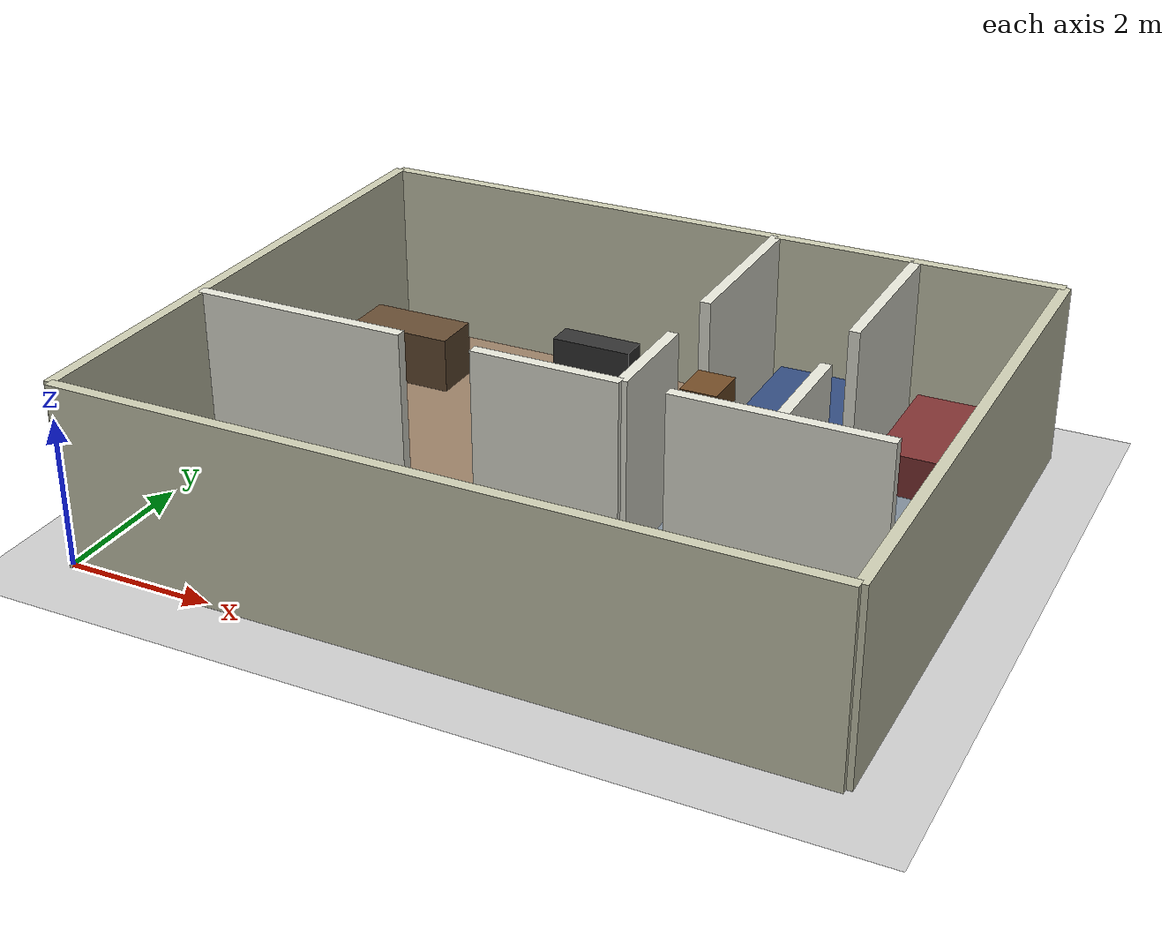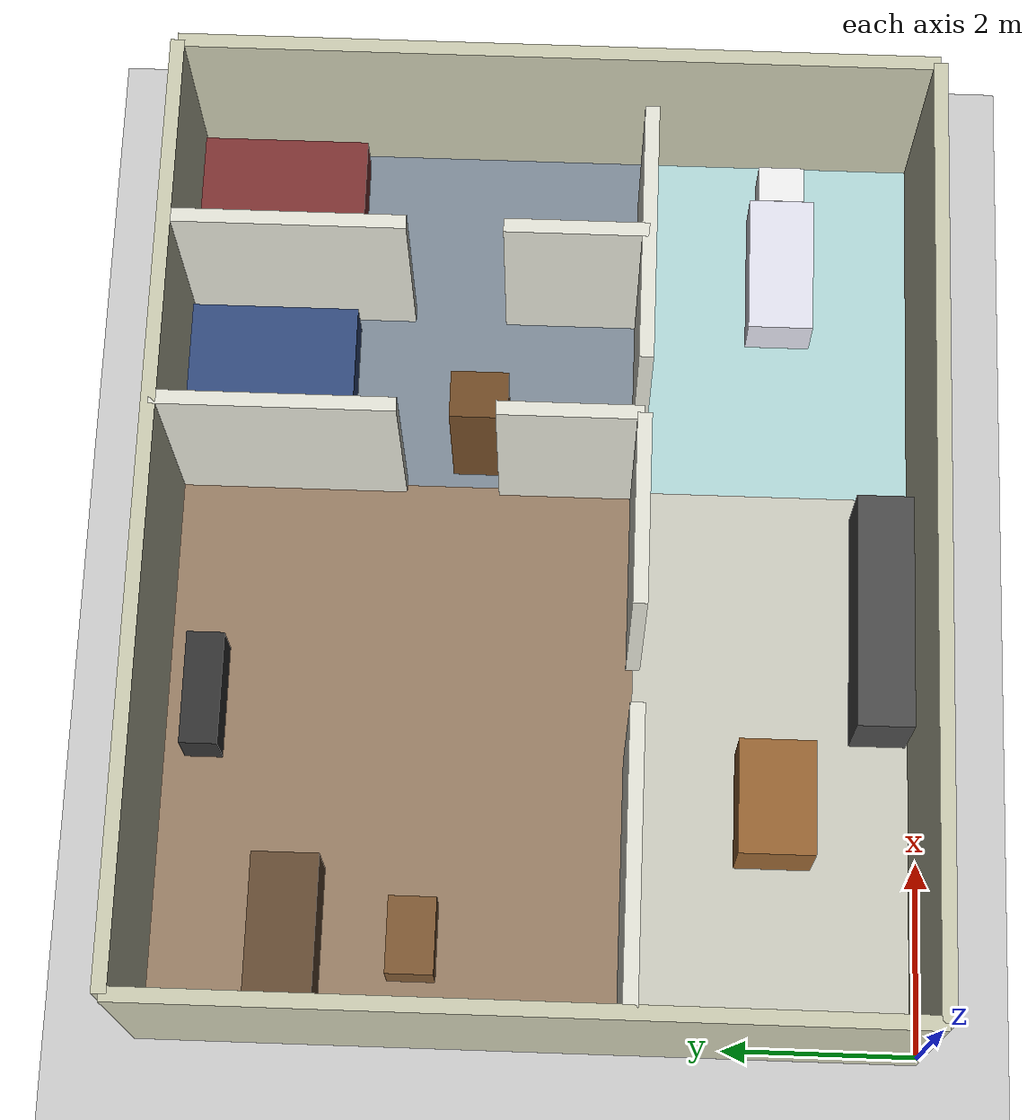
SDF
<?xml version="1.0" ?>
<sdf version="1.6">
  <world name="apartment">

    <!-- Physics -->
    <physics type="ode">
      <max_step_size>0.001</max_step_size>
      <real_time_factor>1</real_time_factor>
      <real_time_update_rate>1000</real_time_update_rate>
    </physics>

    <!-- Lighting -->
    <include>
      <uri>model://sun</uri>
    </include>

    <!-- Ground Plane -->
    <include>
      <uri>model://ground_plane</uri>
    </include>

    <!-- ==================== APARTMENT STRUCTURE ==================== -->
    <!-- Outer Walls - 10m x 8m apartment -->

    <!-- North Wall (top) -->
    <model name="north_wall">
      <static>true</static>
      <pose>5 8 1.25 0 0 0</pose>
      <link name="link">
        <collision name="collision">
          <geometry>
            <box><size>10 0.15 2.5</size></box>
          </geometry>
        </collision>
        <visual name="visual">
          <geometry>
            <box><size>10 0.15 2.5</size></box>
          </geometry>
          <material>
            <ambient>0.8 0.8 0.7 1</ambient>
            <diffuse>0.8 0.8 0.7 1</diffuse>
          </material>
        </visual>
      </link>
    </model>

    <!-- South Wall (bottom) -->
    <model name="south_wall">
      <static>true</static>
      <pose>5 0 1.25 0 0 0</pose>
      <link name="link">
        <collision name="collision">
          <geometry>
            <box><size>10 0.15 2.5</size></box>
          </geometry>
        </collision>
        <visual name="visual">
          <geometry>
            <box><size>10 0.15 2.5</size></box>
          </geometry>
          <material>
            <ambient>0.8 0.8 0.7 1</ambient>
            <diffuse>0.8 0.8 0.7 1</diffuse>
          </material>
        </visual>
      </link>
    </model>

    <!-- West Wall (left) -->
    <model name="west_wall">
      <static>true</static>
      <pose>0 4 1.25 0 0 0</pose>
      <link name="link">
        <collision name="collision">
          <geometry>
            <box><size>0.15 8 2.5</size></box>
          </geometry>
        </collision>
        <visual name="visual">
          <geometry>
            <box><size>0.15 8 2.5</size></box>
          </geometry>
          <material>
            <ambient>0.8 0.8 0.7 1</ambient>
            <diffuse>0.8 0.8 0.7 1</diffuse>
          </material>
        </visual>
      </link>
    </model>

    <!-- East Wall (right) -->
    <model name="east_wall">
      <static>true</static>
      <pose>10 4 1.25 0 0 0</pose>
      <link name="link">
        <collision name="collision">
          <geometry>
            <box><size>0.15 8 2.5</size></box>
          </geometry>
        </collision>
        <visual name="visual">
          <geometry>
            <box><size>0.15 8 2.5</size></box>
          </geometry>
          <material>
            <ambient>0.8 0.8 0.7 1</ambient>
            <diffuse>0.8 0.8 0.7 1</diffuse>
          </material>
        </visual>
      </link>
    </model>

    <!-- ==================== INTERNAL WALLS WITH DOORWAYS ==================== -->

    <!-- Kitchen wall - LEFT segment (from west wall to doorway) -->
    <model name="kitchen_wall_left">
      <static>true</static>
      <pose>1.5 3 1.25 0 0 0</pose>
      <link name="link">
        <collision name="collision">
          <geometry>
            <box><size>3 0.15 2.5</size></box>
          </geometry>
        </collision>
        <visual name="visual">
          <geometry>
            <box><size>3 0.15 2.5</size></box>
          </geometry>
          <material>
            <ambient>0.9 0.9 0.85 1</ambient>
            <diffuse>0.9 0.9 0.85 1</diffuse>
          </material>
        </visual>
      </link>
    </model>

    <!-- Kitchen wall - RIGHT segment (from doorway to hallway wall) -->
    <model name="kitchen_wall_right">
      <static>true</static>
      <pose>5 3 1.25 0 0 0</pose>
      <link name="link">
        <collision name="collision">
          <geometry>
            <box><size>2 0.15 2.5</size></box>
          </geometry>
        </collision>
        <visual name="visual">
          <geometry>
            <box><size>2 0.15 2.5</size></box>
          </geometry>
          <material>
            <ambient>0.9 0.9 0.85 1</ambient>
            <diffuse>0.9 0.9 0.85 1</diffuse>
          </material>
        </visual>
      </link>
    </model>
    <!-- DOORWAY at x=3.5, y=3 (1m wide) -->

    <!-- Hallway vertical wall - BOTTOM segment (from kitchen wall to doorway) -->
    <model name="hallway_wall_bottom">
      <static>true</static>
      <pose>6 3.75 1.25 0 0 0</pose>
      <link name="link">
        <collision name="collision">
          <geometry>
            <box><size>0.15 1.5 2.5</size></box>
          </geometry>
        </collision>
        <visual name="visual">
          <geometry>
            <box><size>0.15 1.5 2.5</size></box>
          </geometry>
          <material>
            <ambient>0.9 0.9 0.85 1</ambient>
            <diffuse>0.9 0.9 0.85 1</diffuse>
          </material>
        </visual>
      </link>
    </model>

    <!-- Hallway vertical wall - TOP segment (from doorway to north wall) -->
    <model name="hallway_wall_top">
      <static>true</static>
      <pose>6 6.75 1.25 0 0 0</pose>
      <link name="link">
        <collision name="collision">
          <geometry>
            <box><size>0.15 2.5 2.5</size></box>
          </geometry>
        </collision>
        <visual name="visual">
          <geometry>
            <box><size>0.15 2.5 2.5</size></box>
          </geometry>
          <material>
            <ambient>0.9 0.9 0.85 1</ambient>
            <diffuse>0.9 0.9 0.85 1</diffuse>
          </material>
        </visual>
      </link>
    </model>
    <!-- DOORWAY at x=6, y=5 (1m wide) -->

    <!-- Bedroom divider - BOTTOM segment -->
    <model name="bedroom_divider_bottom">
      <static>true</static>
      <pose>8 3.75 1.25 0 0 0</pose>
      <link name="link">
        <collision name="collision">
          <geometry>
            <box><size>0.15 1.5 2.5</size></box>
          </geometry>
        </collision>
        <visual name="visual">
          <geometry>
            <box><size>0.15 1.5 2.5</size></box>
          </geometry>
          <material>
            <ambient>0.9 0.9 0.85 1</ambient>
            <diffuse>0.9 0.9 0.85 1</diffuse>
          </material>
        </visual>
      </link>
    </model>

    <!-- Bedroom divider - TOP segment -->
    <model name="bedroom_divider_top">
      <static>true</static>
      <pose>8 6.75 1.25 0 0 0</pose>
      <link name="link">
        <collision name="collision">
          <geometry>
            <box><size>0.15 2.5 2.5</size></box>
          </geometry>
        </collision>
        <visual name="visual">
          <geometry>
            <box><size>0.15 2.5 2.5</size></box>
          </geometry>
          <material>
            <ambient>0.9 0.9 0.85 1</ambient>
            <diffuse>0.9 0.9 0.85 1</diffuse>
          </material>
        </visual>
      </link>
    </model>
    <!-- DOORWAY at x=8, y=5 (1m wide) -->

    <!-- Bathroom wall - only partial, with doorway -->
    <model name="bathroom_wall">
      <static>true</static>
      <pose>8 3 1.25 0 0 0</pose>
      <link name="link">
        <collision name="collision">
          <geometry>
            <box><size>2.8 0.15 2.5</size></box>
          </geometry>
        </collision>
        <visual name="visual">
          <geometry>
            <box><size>2.8 0.15 2.5</size></box>
          </geometry>
          <material>
            <ambient>0.9 0.9 0.85 1</ambient>
            <diffuse>0.9 0.9 0.85 1</diffuse>
          </material>
        </visual>
      </link>
    </model>
    <!-- DOORWAY at x=6.8, y=3 (0.8m wide) -->

    <!-- ==================== FURNITURE ==================== -->

    <!-- Living Room Sofa - against west wall -->
    <model name="sofa">
      <static>true</static>
      <pose>1.0 6.5 0.4 0 0 0</pose>
      <link name="link">
        <collision name="collision">
          <geometry>
            <box><size>1.5 0.7 0.8</size></box>
          </geometry>
        </collision>
        <visual name="visual">
          <geometry>
            <box><size>1.5 0.7 0.8</size></box>
          </geometry>
          <material>
            <ambient>0.4 0.3 0.2 1</ambient>
            <diffuse>0.4 0.3 0.2 1</diffuse>
          </material>
        </visual>
      </link>
    </model>

    <!-- Coffee Table - in front of sofa -->
    <model name="coffee_table">
      <static>true</static>
      <pose>1.0 5.2 0.25 0 0 0</pose>
      <link name="link">
        <collision name="collision">
          <geometry>
            <box><size>0.8 0.5 0.5</size></box>
          </geometry>
        </collision>
        <visual name="visual">
          <geometry>
            <box><size>0.8 0.5 0.5</size></box>
          </geometry>
          <material>
            <ambient>0.5 0.35 0.2 1</ambient>
            <diffuse>0.5 0.35 0.2 1</diffuse>
          </material>
        </visual>
      </link>
    </model>

    <!-- Kitchen Table -->
    <model name="kitchen_table">
      <static>true</static>
      <pose>2.5 1.5 0.4 0 0 0</pose>
      <link name="link">
        <collision name="collision">
          <geometry>
            <box><size>1.2 0.8 0.8</size></box>
          </geometry>
        </collision>
        <visual name="visual">
          <geometry>
            <box><size>1.2 0.8 0.8</size></box>
          </geometry>
          <material>
            <ambient>0.6 0.4 0.2 1</ambient>
            <diffuse>0.6 0.4 0.2 1</diffuse>
          </material>
        </visual>
      </link>
    </model>

    <!-- Kitchen Counter (along south wall) -->
    <model name="kitchen_counter">
      <static>true</static>
      <pose>4.5 0.4 0.45 0 0 0</pose>
      <link name="link">
        <collision name="collision">
          <geometry>
            <box><size>2.5 0.6 0.9</size></box>
          </geometry>
        </collision>
        <visual name="visual">
          <geometry>
            <box><size>2.5 0.6 0.9</size></box>
          </geometry>
          <material>
            <ambient>0.3 0.3 0.3 1</ambient>
            <diffuse>0.3 0.3 0.3 1</diffuse>
          </material>
        </visual>
      </link>
    </model>

    <!-- Bedroom 1 - Bed -->
    <model name="bed1">
      <static>true</static>
      <pose>7 7 0.3 0 0 0</pose>
      <link name="link">
        <collision name="collision">
          <geometry>
            <box><size>1.6 1.8 0.6</size></box>
          </geometry>
        </collision>
        <visual name="visual">
          <geometry>
            <box><size>1.6 1.8 0.6</size></box>
          </geometry>
          <material>
            <ambient>0.2 0.3 0.5 1</ambient>
            <diffuse>0.2 0.3 0.5 1</diffuse>
          </material>
        </visual>
      </link>
    </model>

    <!-- Bedroom 2 - Bed -->
    <model name="bed2">
      <static>true</static>
      <pose>9 7 0.3 0 0 0</pose>
      <link name="link">
        <collision name="collision">
          <geometry>
            <box><size>1.6 1.8 0.6</size></box>
          </geometry>
        </collision>
        <visual name="visual">
          <geometry>
            <box><size>1.6 1.8 0.6</size></box>
          </geometry>
          <material>
            <ambient>0.5 0.2 0.2 1</ambient>
            <diffuse>0.5 0.2 0.2 1</diffuse>
          </material>
        </visual>
      </link>
    </model>

    <!-- Wardrobe in Bedroom 1 -->
    <model name="wardrobe">
      <static>true</static>
      <pose>6.4 4.7 0.9 0 0 0</pose>
      <link name="link">
        <collision name="collision">
          <geometry>
            <box><size>0.5 0.6 1.8</size></box>
          </geometry>
        </collision>
        <visual name="visual">
          <geometry>
            <box><size>0.5 0.6 1.8</size></box>
          </geometry>
          <material>
            <ambient>0.45 0.3 0.15 1</ambient>
            <diffuse>0.45 0.3 0.15 1</diffuse>
          </material>
        </visual>
      </link>
    </model>

    <!-- Bathroom - Bathtub -->
    <model name="bathtub">
      <static>true</static>
      <pose>8.5 1.5 0.3 0 0 0</pose>
      <link name="link">
        <collision name="collision">
          <geometry>
            <box><size>1.5 0.7 0.6</size></box>
          </geometry>
        </collision>
        <visual name="visual">
          <geometry>
            <box><size>1.5 0.7 0.6</size></box>
          </geometry>
          <material>
            <ambient>0.9 0.9 0.95 1</ambient>
            <diffuse>0.9 0.9 0.95 1</diffuse>
          </material>
        </visual>
      </link>
    </model>

    <!-- Bathroom - Toilet -->
    <model name="toilet">
      <static>true</static>
      <pose>9.5 1.5 0.25 0 0 0</pose>
      <link name="link">
        <collision name="collision">
          <geometry>
            <box><size>0.4 0.5 0.5</size></box>
          </geometry>
        </collision>
        <visual name="visual">
          <geometry>
            <box><size>0.4 0.5 0.5</size></box>
          </geometry>
          <material>
            <ambient>0.95 0.95 0.95 1</ambient>
            <diffuse>0.95 0.95 0.95 1</diffuse>
          </material>
        </visual>
      </link>
    </model>

    <!-- TV Stand in Living Room -->
    <model name="tv_stand">
      <static>true</static>
      <pose>3.5 7.5 0.3 0 0 0</pose>
      <link name="link">
        <collision name="collision">
          <geometry>
            <box><size>1.2 0.4 0.6</size></box>
          </geometry>
        </collision>
        <visual name="visual">
          <geometry>
            <box><size>1.2 0.4 0.6</size></box>
          </geometry>
          <material>
            <ambient>0.2 0.2 0.2 1</ambient>
            <diffuse>0.2 0.2 0.2 1</diffuse>
          </material>
        </visual>
      </link>
    </model>

    <!-- ==================== FLOOR COLORS FOR ROOMS ==================== -->

    <!-- Living Room Floor -->
    <model name="living_floor">
      <static>true</static>
      <pose>3 5.5 0.001 0 0 0</pose>
      <link name="link">
        <visual name="visual">
          <geometry>
            <box><size>6 5 0.001</size></box>
          </geometry>
          <material>
            <ambient>0.6 0.5 0.4 1</ambient>
            <diffuse>0.6 0.5 0.4 1</diffuse>
          </material>
        </visual>
      </link>
    </model>

    <!-- Kitchen Floor -->
    <model name="kitchen_floor">
      <static>true</static>
      <pose>3 1.5 0.001 0 0 0</pose>
      <link name="link">
        <visual name="visual">
          <geometry>
            <box><size>6 3 0.001</size></box>
          </geometry>
          <material>
            <ambient>0.8 0.8 0.75 1</ambient>
            <diffuse>0.8 0.8 0.75 1</diffuse>
          </material>
        </visual>
      </link>
    </model>

    <!-- Bedrooms Floor -->
    <model name="bedroom_floor">
      <static>true</static>
      <pose>8 5.5 0.001 0 0 0</pose>
      <link name="link">
        <visual name="visual">
          <geometry>
            <box><size>4 5 0.001</size></box>
          </geometry>
          <material>
            <ambient>0.5 0.55 0.6 1</ambient>
            <diffuse>0.5 0.55 0.6 1</diffuse>
          </material>
        </visual>
      </link>
    </model>

    <!-- Bathroom Floor -->
    <model name="bathroom_floor">
      <static>true</static>
      <pose>8 1.5 0.001 0 0 0</pose>
      <link name="link">
        <visual name="visual">
          <geometry>
            <box><size>4 3 0.001</size></box>
          </geometry>
          <material>
            <ambient>0.7 0.85 0.85 1</ambient>
            <diffuse>0.7 0.85 0.85 1</diffuse>
          </material>
        </visual>
      </link>
    </model>

  </world>
</sdf>
